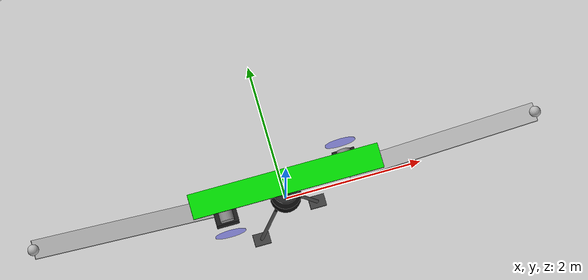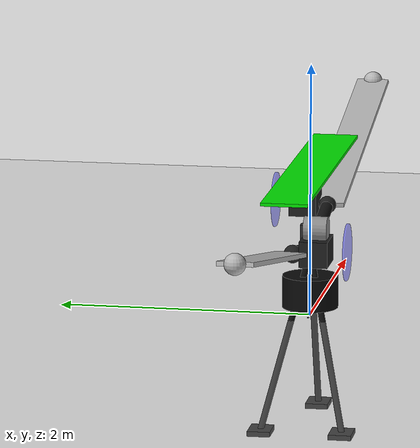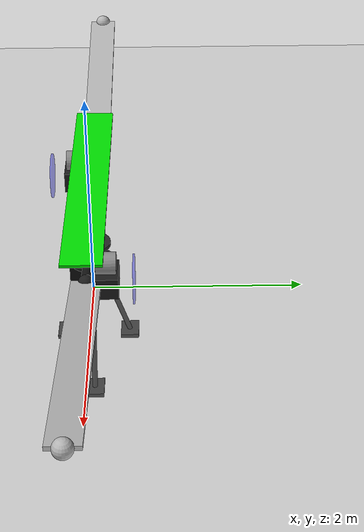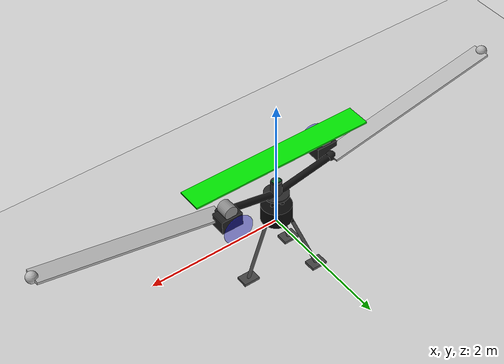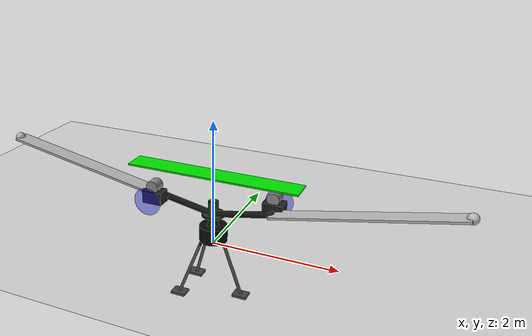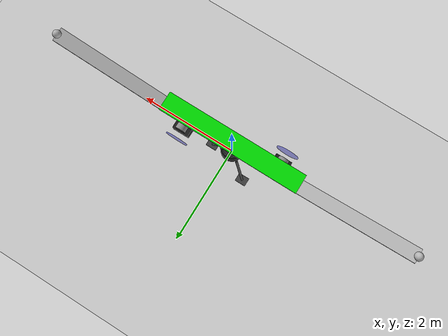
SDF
<?xml version="1.0" ?>
<sdf version="1.5">
  <world name="teeter_rotor_hitl_world">
    <scene>
      <ambient>0.7 0.7 0.7 1</ambient>
      <background>0.7 0.7 0.7 1</background>
      <shadows>false</shadows>
    </scene>

    <gui fullscreen="0">
      <camera name="user_camera">
        <pose>-7.0 -6.0 4.0 0 0.45 0.72</pose>
        <view_controller>orbit</view_controller>
        <projection_type>perspective</projection_type>
      </camera>
    </gui>

    <include>
      <uri>model://sun</uri>
    </include>

    <include>
      <uri>model://ground_plane</uri>
    </include>

    <include>
      <uri>model://asphalt_plane</uri>
    </include>

    <physics name="default_physics" default="0" type="ode">
      <gravity>0 0 -9.8066</gravity>
      <ode>
        <solver>
          <type>quick</type>
          <iters>10</iters>
          <sor>1.3</sor>
          <use_dynamic_moi_rescaling>0</use_dynamic_moi_rescaling>
        </solver>
        <constraints>
          <cfm>0</cfm>
          <erp>0.2</erp>
          <contact_max_correcting_vel>100</contact_max_correcting_vel>
          <contact_surface_layer>0.001</contact_surface_layer>
        </constraints>
      </ode>
      <max_step_size>0.004</max_step_size>
      <real_time_factor>1</real_time_factor>
      <real_time_update_rate>250</real_time_update_rate>
      <magnetic_field>6.0e-6 2.3e-5 -4.2e-5</magnetic_field>
    </physics>

    <include>
      <uri>model://teeter_rotor_hitl</uri>
      <pose>0 0 0 0 0 3.14159265359</pose>
    </include>
  </world>
</sdf>

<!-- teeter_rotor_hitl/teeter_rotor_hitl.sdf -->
<sdf version="1.6">
  <model name="teeter_rotor">
    <!-- DOCUMENTATION HEADER                                                    -->
    <pose>0 0 0.86 0 0 0</pose>
    <static>false</static>

    <!-- base_link                                                              -->
    <link name="base_link">
      <pose>0 0 0 0 0 0</pose>
      <inertial>
        <mass>11.05</mass>
        <inertia>
          <ixx>8.0</ixx>
          <iyy>8.0</iyy>
          <izz>12.0</izz>
          <ixy>0.0</ixy>
          <ixz>0.0</ixz>
          <iyz>0.0</iyz>
        </inertia>
      </inertial>

      <!-- Tripod mast between base_link and rotor hub              -->
      <!-- This is fixed to base_link and visually supports rotor   -->
      <!-- area. It does not physically attach to spinning rotor_link. -->
      <collision name="tripod_mast_front_left_collision">
        <pose>0.2250 0.1600 -0.1600 0.000000 0.390870 -2.523448</pose>
        <geometry>
          <cylinder>
            <radius>0.0250</radius>
            <length>1.4493</length>
          </cylinder>
        </geometry>
        <surface>
          <contact>
            <ode>
              <min_depth>0.001</min_depth>
              <max_vel>0</max_vel>
            </ode>
          </contact>
          <friction>
            <ode/>
          </friction>
        </surface>
      </collision>
      <collision name="tripod_mast_front_right_collision">
        <pose>0.2250 -0.1600 -0.1600 0.000000 0.390870 2.523448</pose>
        <geometry>
          <cylinder>
            <radius>0.0250</radius>
            <length>1.4493</length>
          </cylinder>
        </geometry>
        <surface>
          <contact>
            <ode>
              <min_depth>0.001</min_depth>
              <max_vel>0</max_vel>
            </ode>
          </contact>
          <friction>
            <ode/>
          </friction>
        </surface>
      </collision>
      <collision name="tripod_mast_rear_collision">
        <pose>-0.2400 0.0000 -0.1600 0.000000 0.343969 0.000000</pose>
        <geometry>
          <cylinder>
            <radius>0.0250</radius>
            <length>1.4234</length>
          </cylinder>
        </geometry>
        <surface>
          <contact>
            <ode>
              <min_depth>0.001</min_depth>
              <max_vel>0</max_vel>
            </ode>
          </contact>
          <friction>
            <ode/>
          </friction>
        </surface>
      </collision>

      <collision name="landing_foot_front_left_collision">
        <pose>0.4500 0.3200 -0.8400 0 0 0</pose>
        <geometry>
          <box>
            <size>0.24 0.18 0.04</size>
          </box>
        </geometry>
        <surface>
          <contact>
            <ode>
              <min_depth>0.001</min_depth>
              <max_vel>0</max_vel>
            </ode>
          </contact>
          <friction>
            <ode>
              <mu>1.0</mu>
              <mu2>1.0</mu2>
            </ode>
          </friction>
        </surface>
      </collision>
      <collision name="landing_foot_front_right_collision">
        <pose>0.4500 -0.3200 -0.8400 0 0 0</pose>
        <geometry>
          <box>
            <size>0.24 0.18 0.04</size>
          </box>
        </geometry>
        <surface>
          <contact>
            <ode>
              <min_depth>0.001</min_depth>
              <max_vel>0</max_vel>
            </ode>
          </contact>
          <friction>
            <ode>
              <mu>1.0</mu>
              <mu2>1.0</mu2>
            </ode>
          </friction>
        </surface>
      </collision>
      <collision name="landing_foot_rear_collision">
        <pose>-0.4800 0.0000 -0.8400 0 0 0</pose>
        <geometry>
          <box>
            <size>0.24 0.18 0.04</size>
          </box>
        </geometry>
        <surface>
          <contact>
            <ode>
              <min_depth>0.001</min_depth>
              <max_vel>0</max_vel>
            </ode>
          </contact>
          <friction>
            <ode>
              <mu>1.0</mu>
              <mu2>1.0</mu2>
            </ode>
          </friction>
        </surface>
      </collision>
      <visual name="landing_foot_front_left_visual">
        <pose>0.4500 0.3200 -0.8400 0 0 0</pose>
        <geometry>
          <box>
            <size>0.24 0.18 0.04</size>
          </box>
        </geometry>
        <material>
          <ambient>0.05 0.05 0.05 1</ambient>
          <diffuse>0.05 0.05 0.05 1</diffuse>
        </material>
      </visual>
      <visual name="landing_foot_front_right_visual">
        <pose>0.4500 -0.3200 -0.8400 0 0 0</pose>
        <geometry>
          <box>
            <size>0.24 0.18 0.04</size>
          </box>
        </geometry>
        <material>
          <ambient>0.05 0.05 0.05 1</ambient>
          <diffuse>0.05 0.05 0.05 1</diffuse>
        </material>
      </visual>
      <visual name="landing_foot_rear_visual">
        <pose>-0.4800 0.0000 -0.8400 0 0 0</pose>
        <geometry>
          <box>
            <size>0.24 0.18 0.04</size>
          </box>
        </geometry>
        <material>
          <ambient>0.05 0.05 0.05 1</ambient>
          <diffuse>0.05 0.05 0.05 1</diffuse>
        </material>
      </visual>
      <visual name="tripod_mast_front_left_visual">
        <pose>0.2250 0.1600 -0.1600 0.000000 0.390870 -2.523448</pose>
        <geometry>
          <cylinder>
            <radius>0.0250</radius>
            <length>1.4493</length>
          </cylinder>
        </geometry>
        <material>
          <ambient>0.05 0.05 0.05 1</ambient>
          <diffuse>0.05 0.05 0.05 1</diffuse>
        </material>
      </visual>
      <visual name="tripod_mast_front_right_visual">
        <pose>0.2250 -0.1600 -0.1600 0.000000 0.390870 2.523448</pose>
        <geometry>
          <cylinder>
            <radius>0.0250</radius>
            <length>1.4493</length>
          </cylinder>
        </geometry>
        <material>
          <ambient>0.05 0.05 0.05 1</ambient>
          <diffuse>0.05 0.05 0.05 1</diffuse>
        </material>
      </visual>
      <visual name="tripod_mast_rear_visual">
        <pose>-0.2400 0.0000 -0.1600 0.000000 0.343969 0.000000</pose>
        <geometry>
          <cylinder>
            <radius>0.0250</radius>
            <length>1.4234</length>
          </cylinder>
        </geometry>
        <material>
          <ambient>0.05 0.05 0.05 1</ambient>
          <diffuse>0.05 0.05 0.05 1</diffuse>
        </material>
      </visual>
      <visual name="tripod_mast_top_joint_visual">
        <pose>0.0000 0.0000 0.5500 0 0 0</pose>
        <geometry>
          <sphere>
            <radius>0.075</radius>
          </sphere>
        </geometry>
        <material>
          <ambient>0.18 0.18 0.18 1</ambient>
          <diffuse>0.18 0.18 0.18 1</diffuse>
        </material>
      </visual>

      <visual name="tripod_mast_top_plate_visual">
        <pose>0 0 0.51 0 0 0</pose>
        <geometry>
          <cylinder>
            <radius>0.18</radius>
            <length>0.035</length>
          </cylinder>
        </geometry>
        <material>
          <ambient>0.16 0.16 0.16 1</ambient>
          <diffuse>0.16 0.16 0.16 1</diffuse>
        </material>
      </visual>

      <!-- PX4 SITL sensor: IMU                                                -->
      <!--
        This sensor/plugin publishes IMU data for PX4 through the Gazebo
        mavlink_interface. The topic is /imu, matching imuSubTopic below.
      -->
      <sensor name="imu_sensor" type="imu">
        <always_on>true</always_on>
        <update_rate>100</update_rate>
        <visualize>false</visualize>
        <imu>
          <angular_velocity>
            <x>
              <noise type="gaussian">
                <mean>0.0</mean>
                <stddev>0.0003394</stddev>
                <bias_mean>0.0</bias_mean>
                <bias_stddev>3.8785e-05</bias_stddev>
              </noise>
            </x>
            <y>
              <noise type="gaussian">
                <mean>0.0</mean>
                <stddev>0.0003394</stddev>
                <bias_mean>0.0</bias_mean>
                <bias_stddev>3.8785e-05</bias_stddev>
              </noise>
            </y>
            <z>
              <noise type="gaussian">
                <mean>0.0</mean>
                <stddev>0.0003394</stddev>
                <bias_mean>0.0</bias_mean>
                <bias_stddev>3.8785e-05</bias_stddev>
              </noise>
            </z>
          </angular_velocity>
          <linear_acceleration>
            <x>
              <noise type="gaussian">
                <mean>0.0</mean>
                <stddev>0.004</stddev>
                <bias_mean>0.0</bias_mean>
                <bias_stddev>0.006</bias_stddev>
              </noise>
            </x>
            <y>
              <noise type="gaussian">
                <mean>0.0</mean>
                <stddev>0.004</stddev>
                <bias_mean>0.0</bias_mean>
                <bias_stddev>0.006</bias_stddev>
              </noise>
            </y>
            <z>
              <noise type="gaussian">
                <mean>0.0</mean>
                <stddev>0.004</stddev>
                <bias_mean>0.0</bias_mean>
                <bias_stddev>0.006</bias_stddev>
              </noise>
            </z>
          </linear_acceleration>
        </imu>
      </sensor>

    </link>

    <link name="/imu_link">
      <pose>0 0 0.694 0 0 0</pose>
      <inertial>
        <pose>0 0 0 0 0 0</pose>
        <mass>0.015</mass>
        <inertia>
          <ixx>0.00001</ixx>
          <ixy>0</ixy>
          <ixz>0</ixz>
          <iyy>0.00001</iyy>
          <iyz>0</iyz>
          <izz>0.00001</izz>
        </inertia>
      </inertial>
      <visual name="flight_controller_visual">
        <pose>0 0 0.035 0 0 0</pose>
        <geometry>
          <box>
            <size>0.12 0.08 0.025</size>
          </box>
        </geometry>
        <material>
          <ambient>0.02 0.18 0.08 1</ambient>
          <diffuse>0.04 0.35 0.14 1</diffuse>
          <specular>0.05 0.12 0.05 1</specular>
        </material>
      </visual>
    </link>

    <joint name="/imu_joint" type="fixed">
      <child>/imu_link</child>
      <!-- Rotor-hub mounted flight controller for SITL. The IMU link spins
           with rotor_link; mavlink_interface de-rotates it back into the
           body frame before sending data to stock PX4. -->
      <parent>rotor_link</parent>
    </joint>

    <!-- rotor_link                                                              -->
    <link name="rotor_link">
      <pose>0 0 0.694 0 0 0</pose>
      <inertial>
        <mass>8.0</mass>
        <inertia>
          <ixx>18.0</ixx>
          <iyy>18.0</iyy>
          <izz>35.0</izz>
          <ixy>0.0</ixy>
          <ixz>0.0</ixz>
          <iyz>0.0</iyz>
        </inertia>
      </inertial>

      <!-- Two-blade physical/simple rotor visual and collision. -->
      <collision name="blade_1_collision">
        <pose>2.2608 0 0.2617 0 -0.191986 0</pose>
        <geometry>
          <box>
            <size>2.7432 0.2667 0.035</size>
          </box>
        </geometry>
      </collision>
      <visual name="blade_1_visual">
        <pose>2.2608 0 0.2617 0 -0.191986 0</pose>
        <geometry>
          <box>
            <size>2.7432 0.2667 0.035</size>
          </box>
        </geometry>
      </visual>

      <collision name="blade_2_collision">
        <pose>-2.2608 0 0.2617 0 -0.191986 3.14159265359</pose>
        <geometry>
          <box>
            <size>2.7432 0.2667 0.035</size>
          </box>
        </geometry>
      </collision>
      <visual name="blade_2_visual">
        <pose>-2.2608 0 0.2617 0 -0.191986 3.14159265359</pose>
        <geometry>
          <box>
            <size>2.7432 0.2667 0.035</size>
          </box>
        </geometry>
      </visual>

      <!-- Central rotor hub / teeter pivot housing                 -->
      <!-- Hub radius = 0.08, length = 0.25                         -->
      <!-- Hub is lowered so the teeter beams connect to blade root -->
      <!-- instead of visual pitch indicators.                      -->
      <collision name="rotor_hub_collision">
        <pose>0 0 -0.0889 0 0 0</pose>
        <geometry>
          <cylinder>
            <radius>0.08</radius>
            <length>0.25</length>
          </cylinder>
        </geometry>
      </collision>

      <visual name="rotor_hub_visual">
        <pose>0 0 -0.0889 0 0 0</pose>
        <geometry>
          <cylinder>
            <radius>0.08</radius>
            <length>0.25</length>
          </cylinder>
        </geometry>
        <material>
          <ambient>0.20 0.20 0.20 1</ambient>
          <diffuse>0.20 0.20 0.20 1</diffuse>
        </material>
      </visual>

      <!-- Central teeter pivot marker.
           This is the lower center point of the V shape:
           right beam endpoint 1 =  0.0000 0 -0.1778
           left  beam endpoint 1 =  0.0000 0 -0.1778
      -->
      <visual name="teeter_center_pivot_visual">
        <pose>0 0 -0.1778 0 0 0</pose>
        <geometry>
          <sphere>
            <radius>0.075</radius>
          </sphere>
        </geometry>
        <material>
          <ambient>0.10 0.10 0.10 1</ambient>
          <diffuse>0.10 0.10 0.10 1</diffuse>
        </material>
      </visual>

      <!-- Two-part teeter beam, attached to actual blade roots     -->
      <!-- Blade root points from the current blade visuals:        -->
      <!--   blade 1 root: +0.9144 0 0.0000                         -->
      <!--   blade 2 root: -0.9144 0 0.0000                         -->
      <!-- Teeter center pivot: 0 0 -0.1778                         -->
      <!-- This makes each beam parallel to the 11 deg blade cone.  -->

      <!-- Right teeter beam: center pivot -> blade_1_visual root -->
      <collision name="teeter_beam_right_collision">
        <pose>0.4572 0 -0.0889 0 1.37881010908 0</pose>
        <geometry>
          <cylinder>
            <radius>0.05</radius>
            <length>0.9316</length>
          </cylinder>
        </geometry>
      </collision>

      <visual name="teeter_beam_right_visual">
        <pose>0.4572 0 -0.0889 0 1.37881010908 0</pose>
        <geometry>
          <cylinder>
            <radius>0.05</radius>
            <length>0.9316</length>
          </cylinder>
        </geometry>
        <material>
          <ambient>0.08 0.08 0.08 1</ambient>
          <diffuse>0.08 0.08 0.08 1</diffuse>
        </material>
      </visual>

      <!-- Left teeter beam: center pivot -> blade_2_visual root -->
      <collision name="teeter_beam_left_collision">
        <pose>-0.4572 0 -0.0889 0 -1.37881010908 0</pose>
        <geometry>
          <cylinder>
            <radius>0.05</radius>
            <length>0.9316</length>
          </cylinder>
        </geometry>
      </collision>

      <visual name="teeter_beam_left_visual">
        <pose>-0.4572 0 -0.0889 0 -1.37881010908 0</pose>
        <geometry>
          <cylinder>
            <radius>0.05</radius>
            <length>0.9316</length>
          </cylinder>
        </geometry>
        <material>
          <ambient>0.08 0.08 0.08 1</ambient>
          <diffuse>0.08 0.08 0.08 1</diffuse>
        </material>
      </visual>

      <!-- Optional root clamps to make the blade connection obvious. -->
      <visual name="blade_1_root_clamp_visual">
        <pose>0.9144 0 0.0000 0 0 0</pose>
        <geometry>
          <sphere>
            <radius>0.07</radius>
          </sphere>
        </geometry>
        <material>
          <ambient>0.12 0.12 0.12 1</ambient>
          <diffuse>0.12 0.12 0.12 1</diffuse>
        </material>
      </visual>

      <visual name="blade_2_root_clamp_visual">
        <pose>-0.9144 0 0.0000 0 0 0</pose>
        <geometry>
          <sphere>
            <radius>0.07</radius>
          </sphere>
        </geometry>
        <material>
          <ambient>0.12 0.12 0.12 1</ambient>
          <diffuse>0.12 0.12 0.12 1</diffuse>
        </material>
      </visual>

      <visual name="tip_weight_1_visual">
        <pose>3.6072 0 0.5234 0 0 0</pose>
        <geometry>
          <sphere>
            <radius>0.08</radius>
          </sphere>
        </geometry>
      </visual>
      <visual name="tip_weight_2_visual">
        <pose>-3.6072 0 0.5234 0 0 0</pose>
        <geometry>
          <sphere>
            <radius>0.08</radius>
          </sphere>
        </geometry>
      </visual>

      <visual name="gp76_engine_1_body_visual">
        <pose>0.9144 0.18 0.03 0 0 0</pose>
        <geometry>
          <box>
            <size>0.32 0.22 0.20</size>
          </box>
        </geometry>
        <material>
          <ambient>0.12 0.12 0.12 1</ambient>
          <diffuse>0.12 0.12 0.12 1</diffuse>
        </material>
      </visual>
      <visual name="gp76_engine_1_cylinder_visual">
        <pose>0.9144 0.18 0.20 1.57079632679 0 0</pose>
        <geometry>
          <cylinder>
            <radius>0.10</radius>
            <length>0.18</length>
          </cylinder>
        </geometry>
        <material>
          <ambient>0.55 0.55 0.55 1</ambient>
          <diffuse>0.55 0.55 0.55 1</diffuse>
        </material>
      </visual>
      <visual name="gp76_engine_1_prop_disc_visual">
        <pose>0.9144 0.42 0.03 1.57079632679 0 0</pose>
        <geometry>
          <cylinder>
            <radius>0.22</radius>
            <length>0.015</length>
          </cylinder>
        </geometry>
        <material>
          <ambient>0.1 0.1 0.9 0.45</ambient>
          <diffuse>0.1 0.1 0.9 0.45</diffuse>
        </material>
      </visual>

      <visual name="gp76_engine_2_body_visual">
        <pose>-0.9144 -0.18 0.03 0 0 3.14159265359</pose>
        <geometry>
          <box>
            <size>0.32 0.22 0.20</size>
          </box>
        </geometry>
        <material>
          <ambient>0.12 0.12 0.12 1</ambient>
          <diffuse>0.12 0.12 0.12 1</diffuse>
        </material>
      </visual>
      <visual name="gp76_engine_2_cylinder_visual">
        <pose>-0.9144 -0.18 0.20 1.57079632679 0 0</pose>
        <geometry>
          <cylinder>
            <radius>0.10</radius>
            <length>0.18</length>
          </cylinder>
        </geometry>
        <material>
          <ambient>0.55 0.55 0.55 1</ambient>
          <diffuse>0.55 0.55 0.55 1</diffuse>
        </material>
      </visual>
      <visual name="gp76_engine_2_prop_disc_visual">
        <pose>-0.9144 -0.42 0.03 1.57079632679 0 0</pose>
        <geometry>
          <cylinder>
            <radius>0.22</radius>
            <length>0.015</length>
          </cylinder>
        </geometry>
        <material>
          <ambient>0.1 0.1 0.9 0.45</ambient>
          <diffuse>0.1 0.1 0.9 0.45</diffuse>
        </material>
      </visual>
    </link>

    <!-- Visual-only pitch indicators. -->
    <link name="blade_1_pitch_indicator">
      <pose>0 0 1.17 0 0 0</pose>
      <gravity>false</gravity>
      <self_collide>false</self_collide>
      <inertial>
        <mass>0.001</mass>
        <inertia>
          <ixx>0.000001</ixx>
          <iyy>0.000001</iyy>
          <izz>0.000001</izz>
          <ixy>0.0</ixy>
          <ixz>0.0</ixz>
          <iyz>0.0</iyz>
        </inertia>
      </inertial>
      <visual name="blade_1_pitch_indicator_visual">
        <geometry>
          <box>
            <size>2.7432 0.36 0.025</size>
          </box>
        </geometry>
        <material>
          <ambient>0 0.9 0 1</ambient>
          <diffuse>0 0.9 0 1</diffuse>
        </material>
      </visual>
    </link>

    <link name="blade_2_pitch_indicator">
      <pose>0 0 1.17 0 0 0</pose>
      <gravity>false</gravity>
      <self_collide>false</self_collide>
      <inertial>
        <mass>0.001</mass>
        <inertia>
          <ixx>0.000001</ixx>
          <iyy>0.000001</iyy>
          <izz>0.000001</izz>
          <ixy>0.0</ixy>
          <ixz>0.0</ixz>
          <iyz>0.0</iyz>
        </inertia>
      </inertial>
      <visual name="blade_2_pitch_indicator_visual">
        <geometry>
          <box>
            <size>2.7432 0.36 0.025</size>
          </box>
        </geometry>
        <material>
          <ambient>0.9 0 0 1</ambient>
          <diffuse>0.9 0 0 1</diffuse>
        </material>
      </visual>
    </link>

    <!-- payload_link                                                            -->
    <link name="payload_link">
      <pose>0 0 0.194 0 0 0</pose>
      <inertial>
        <mass>163.2932532</mass>
        <inertia>
          <ixx>2.87226963</ixx>
          <iyy>2.87226963</iyy>
          <izz>3.98870134</izz>
          <ixy>0.0</ixy>
          <ixz>0.0</ixz>
          <iyz>0.0</iyz>
        </inertia>
      </inertial>
      <collision name="payload_plate_collision">
        <geometry>
          <cylinder>
            <radius>0.2206625</radius>
            <length>0.254</length>
          </cylinder>
        </geometry>
        <surface>
          <contact>
            <ode>
              <min_depth>0.001</min_depth>
              <max_vel>0</max_vel>
            </ode>
          </contact>
          <friction>
            <ode/>
          </friction>
        </surface>
      </collision>
      <visual name="payload_plate_visual">
        <geometry>
          <cylinder>
            <radius>0.2206625</radius>
            <length>0.254</length>
          </cylinder>
        </geometry>
        <material>
          <ambient>0.015 0.015 0.015 1</ambient>
          <diffuse>0.04 0.04 0.04 1</diffuse>
          <specular>0.12 0.12 0.12 1</specular>
        </material>
      </visual>
    </link>

    <joint name="payload_fixed_joint" type="fixed">
      <parent>base_link</parent>
      <child>payload_link</child>
    </joint>

    <joint name="main_rotor_joint" type="revolute">
      <parent>base_link</parent>
      <child>rotor_link</child>
      <pose>0 0 0.694 0 0 0</pose>
      <axis>
        <xyz>0 0 1</xyz>
        <limit>
          <lower>-1e16</lower>
          <upper>1e16</upper>
          <effort>10000</effort>
          <velocity>1000</velocity>
        </limit>
        <dynamics>
          <damping>0.01</damping>
          <friction>0.0</friction>
        </dynamics>
      </axis>
    </joint>

    <plugin name="teeter_rotor_plugin" filename="libteeter_rotor_plugin.so">
      <!-- baseLinkName:
           Name of the non-rotating vehicle body link. -->
      <baseLinkName>base_link</baseLinkName>
      <!-- rotorLinkName:
           Name of the simplified spinning rotor assembly. -->
      <rotorLinkName>rotor_link</rotorLinkName>
      <!-- payloadLinkName:
           Physical payload link whose mass/inertia/pose are configured below. -->
      <payloadLinkName>payload_link</payloadLinkName>
      <blade1IndicatorLinkName>blade_1_pitch_indicator</blade1IndicatorLinkName>
      <blade2IndicatorLinkName>blade_2_pitch_indicator</blade2IndicatorLinkName>
      <!-- jointName:
           Revolute joint connecting base_link and rotor_link. -->
      <jointName>main_rotor_joint</jointName>

      <!-- Primary test variables -->
      <!-- targetRpm:
           If useEngineDynamics=false, this directly forces rotor RPM.
           If useEngineDynamics=true, this is only the initial RPM at spawn.
           Unit: rpm. -->
      <targetRpm>0.0</targetRpm>
      <payloadEnabled>true</payloadEnabled>
      <payloadMassLb>360.0</payloadMassLb>
      <payloadOffsetFromCogM>0 0 0.194</payloadOffsetFromCogM>
      <!-- Barbell plate dimensions used to calculate annular-cylinder inertia. -->
      <payloadOuterDiameterIn>17.375</payloadOuterDiameterIn>
      <payloadInnerDiameterIn>1.0</payloadInnerDiameterIn>
      <payloadThicknessIn>10.0</payloadThicknessIn>
      <!-- payloadDisabledScale:
           Used only for the disabled payload dummy inertia calculation.
           payloadEnabled=true intentionally ignores this value. -->
      <payloadDisabledScale>0.08</payloadDisabledScale>
      <!-- blade1PitchDeg:
           Pitch command for blade 1 in degrees.
           Design/reference value: 7.27 deg. -->
      <blade1PitchDeg>7.27</blade1PitchDeg>
      <blade2PitchDeg>7.27</blade2PitchDeg>

      <!-- Azimuth-based cyclic pitch                                          -->
      <useCyclicPitch>true</useCyclicPitch>

      <collectiveDeg>6.73</collectiveDeg>

      <rollCyclicDeg>0.0</rollCyclicDeg>

      <pitchCyclicDeg>0.0</pitchCyclicDeg>

      <!-- cyclicPhaseOffsetDeg:
           Phase tuning knob.
           Helicopter/rotor systems often need phase correction.
           Start at 0 deg, then tune sign and phase after observing response. -->
      <cyclicPhaseOffsetDeg>0.0</cyclicPhaseOffsetDeg>

      <cyclicCommandFrame>world</cyclicCommandFrame>
      <swapCyclicInputs>false</swapCyclicInputs>
      <rollCyclicSign>1.0</rollCyclicSign>
      <pitchCyclicSign>1.0</pitchCyclicSign>

      <!-- PX4 actuator bridge                                                 -->
      <!-- enablePx4ActuatorInput:
           true  = subscribe to PX4/Gazebo motor speed command topic.
           false = use only SDF/manual values.

           This is the first PX4 integration step.
      -->
      <enablePx4ActuatorInput>true</enablePx4ActuatorInput>

      <px4ActuatorTopic>~/teeter_rotor/gazebo/command/motor_speed</px4ActuatorTopic>

      <px4InputMode>motor_speed</px4InputMode>

      <px4MotorSpeedScale>1000.0</px4MotorSpeedScale>

      <px4ThrottleZeroRaw>0.0</px4ThrottleZeroRaw>
      <px4ThrottleFullRaw>1000.0</px4ThrottleFullRaw>
      <px4CollectiveZeroRaw>0.0</px4CollectiveZeroRaw>
      <px4CollectiveFullRaw>1000.0</px4CollectiveFullRaw>

      <!-- Collective mapping:
           normalized actuator[1] = 0 -> minCollectiveCmdDeg
           normalized actuator[1] = 1 -> maxCollectiveCmdDeg -->
      <minCollectiveCmdDeg>2.0</minCollectiveCmdDeg>
      <maxCollectiveCmdDeg>12.0</maxCollectiveCmdDeg>

      <maxCyclicDeg>12.0</maxCyclicDeg>

      <!-- cyclicMomentPerDegNm:
           Optional bring-up assist moment applied to base_link from PX4 cyclic
           commands. Keep this at 0 for physical cyclic-pitch-only control. -->
      <cyclicMomentPerDegNm>0.0</cyclicMomentPerDegNm>

      <cyclicDiskTiltPerDeg>0.5</cyclicDiskTiltPerDeg>
      <maxCyclicDiskTiltDeg>8.0</maxCyclicDiskTiltDeg>

      <!-- px4CommandTimeoutSec:
           If no PX4 actuator message is received for this many seconds,
           plugin falls back to SDF/manual command values. -->
      <px4CommandTimeoutSec>0.5</px4CommandTimeoutSec>

      <!-- PX4 input debug:
           Prints raw motor_speed, normalized values, and mapped command values
           to the Gazebo terminal so QGC stick inputs can be inspected live. -->
      <printPx4InputDebug>true</printPx4InputDebug>
      <px4InputDebugIntervalSec>0.2</px4InputDebugIntervalSec>

      <!-- Engine dynamics -->
      <useEngineDynamics>true</useEngineDynamics>
      <engineThrottle>0.0</engineThrottle>
      <!-- engineRadiusFt:
           Distance from rotor center to each engine thrust line.
           Given design value: 3 ft.
           This is the torque arm for engine thrust. -->
      <engineRadiusFt>3.0</engineRadiusFt>
      <engineThrustLbEach>54.0</engineThrustLbEach>
      <!-- Step 1/2 tuning: increase rotorInertiaKgm2 for slower spool-up, decrease for faster spool-up. -->
      <rotorInertiaKgm2>45.0</rotorInertiaKgm2>
      <kTorque>0.831</kTorque>

      <!-- Visual-only pitch indicators -->
      <!-- showPitchIndicators:
           Enables green/red visual-only blade pitch plates. -->
      <showPitchIndicators>true</showPitchIndicators>
      <!-- animatePitchIndicators:
           If true, visual pitch indicators oscillate so pitch motion is easy to see.
           This is visual-only and does not change lift calculation. -->
      <animatePitchIndicators>false</animatePitchIndicators>
      <!-- pitchIndicatorAnimationAmplitudeDeg:
           Visual-only pitch animation amplitude in degrees. -->
      <pitchIndicatorAnimationAmplitudeDeg>5.0</pitchIndicatorAnimationAmplitudeDeg>
      <!-- pitchIndicatorAnimationFrequencyHz:
           Visual-only pitch animation frequency in Hz. -->
      <pitchIndicatorAnimationFrequencyHz>0.25</pitchIndicatorAnimationFrequencyHz>
      <!-- pitchIndicatorVerticalOffsetM:
           Raises the pitch indicators above the blades for visibility. -->
      <pitchIndicatorVerticalOffsetM>0.18</pitchIndicatorVerticalOffsetM>

      <!-- Fixed constants -->
      <!-- emptyWeightLb:
           Target empty vehicle weight.
           Given design value: 42 lb.
           Current SDF inertial masses approximate this empty weight. -->
      <emptyWeightLb>42.0</emptyWeightLb>
      <kThrust>3.69</kThrust>
      <!-- maxRpm:
           Maximum rotor RPM.
           Given design value: 220 rpm.
           Engine dynamics clamp rotor speed to this value. -->
      <maxRpm>220.0</maxRpm>

      <!-- Pitch model -->
      <!-- hoverPitchDeg:
           Reference pitch where pitch_factor = 1.0.
           Given design condition: 440 lb at 7.27 deg. -->
      <hoverPitchDeg>7.27</hoverPitchDeg>
      <!-- zeroLiftPitchDeg:
           Simple linear model zero-lift reference pitch.
           Tuning parameter, not exact airfoil zero-lift angle. -->
      <zeroLiftPitchDeg>1.0</zeroLiftPitchDeg>
      <minPitchDeg>-4.0</minPitchDeg>
      <!-- maxPitchDeg:
           Upper blade pitch clamp. Keep this above the collective upper bound
           so cyclic authority is not clipped during lateral control. -->
      <maxPitchDeg>22.0</maxPitchDeg>

      <useBladeElementLift>true</useBladeElementLift>
      <airDensityKgM3>1.225</airDensityKgM3>
      <bladeLiftSlopePerRad>6.28318530718</bladeLiftSlopePerRad>
      <bladeElementSections>12</bladeElementSections>
      <bladeElementLiftScale>0.0</bladeElementLiftScale>

      <!-- Rotor metadata -->
      <!-- rotorRadiusFt:
           Rotor radius from center to blade tip.
           Given value: 12 ft. -->
      <rotorRadiusFt>12.0</rotorRadiusFt>
      <!-- hubRadiusFt:
           Hub radius / blade start radius.
           Also matches engine radial location in this simplified layout.
           Given value: 3 ft. -->
      <hubRadiusFt>3.0</hubRadiusFt>
      <!-- numBlades:
           Number of large rotor blades. -->
      <numBlades>2</numBlades>
      <!-- bladeChordIn:
           Blade chord.
           Given value: 10.5 inches. -->
      <bladeChordIn>10.5</bladeChordIn>
      <!-- airfoil:
           Airfoil metadata.
           Not used yet in current equivalent lift model.
           Future blade-element model should use this. -->
      <airfoil>NACA23015</airfoil>
      <!-- tipSpeedFps:
           Tip speed at 220 rpm.
           Given value: 276 ft/s. -->
      <tipSpeedFps>276.0</tipSpeedFps>
      <!-- designGrossWeightLb:
           Design gross weight at 7.27 deg collective.
           Given value: 440 lb. -->
      <designGrossWeightLb>440.0</designGrossWeightLb>
      <!-- tipWeightLb:
           Tip weight per blade.
           Given value: 2.53 lb. -->
      <tipWeightLb>2.53</tipWeightLb>
      <!-- bladeSpanwiseDensityLbFt:
           Approximate blade spanwise density.
           Given value: about 0.3 lb/ft. -->
      <bladeSpanwiseDensityLbFt>0.3</bladeSpanwiseDensityLbFt>
      <!-- forwardSpeedMph:
           Design forward speed metadata.
           Not used yet in current force model. -->
      <forwardSpeedMph>20.0</forwardSpeedMph>
      <!-- rotorTwistDeg:
           Blade twist metadata.
           Given value: 6 deg linear twist.
           Future blade-element model should use this. -->
      <rotorTwistDeg>6.0</rotorTwistDeg>
      <!-- rotorPlaneHeightFt:
           Rotor plane height above ground.
           Given value: 5 ft = 1.524 m. -->
      <rotorPlaneHeightFt>5.0</rotorPlaneHeightFt>
      <!-- teeterAngleLimitDeg:
           Teeter hinge range metadata.
           Given value: +/- 15 deg.
           True teeter hinge is not implemented yet. -->
      <teeterAngleLimitDeg>15.0</teeterAngleLimitDeg>
      <preConeAngleDeg>11.0</preConeAngleDeg>
      <!-- gyroPrecessionTorqueFtLb:
           Gyroscopic precession torque metadata.
           Not directly used yet. -->
      <gyroPrecessionTorqueFtLb>262.0</gyroPrecessionTorqueFtLb>
      <!-- torqueRequiredFtLb:
           Rotor torque required at design condition.
           Used to justify kTorque. -->
      <torqueRequiredFtLb>325.0</torqueRequiredFtLb>
      <!-- equivalentShaftHp:
           Equivalent shaft horsepower metadata.
           Given value: 16 hp. Used with propulsiveEfficiency as the engine
           power cap for rotor drive torque. -->
      <equivalentShaftHp>16.0</equivalentShaftHp>
      <!-- propulsiveEfficiency:
           Design assumption used to convert equivalentShaftHp into available
           rotor power. -->
      <propulsiveEfficiency>0.85</propulsiveEfficiency>
      <!-- numEngines:
           Number of GP-76 engines. -->
      <numEngines>2</numEngines>
      <!-- engineHpEach:
           GP-76 power metadata.
           Current torque model uses thrust and radius, not HP curve. -->
      <engineHpEach>8.0</engineHpEach>
      <!-- mainBladeSparOdMm:
           Main blade spar outer diameter metadata. -->
      <mainBladeSparOdMm>30.0</mainBladeSparOdMm>
      <!-- mainBladeSparIdMm:
           Main blade spar inner diameter metadata. -->
      <mainBladeSparIdMm>28.0</mainBladeSparIdMm>
    </plugin>

    <include>
      <uri>model://gps</uri>
      <pose>0.1 0 0 0 0 0</pose>
      <name>gps0</name>
    </include>
    <joint name="gps0_joint" type="fixed">
      <child>gps0::link</child>
      <parent>base_link</parent>
    </joint>

    <plugin name="groundtruth_plugin" filename="libgazebo_groundtruth_plugin.so">
      <robotNamespace/>
    </plugin>
    <plugin name="magnetometer_plugin" filename="libgazebo_magnetometer_plugin.so">
      <robotNamespace/>
      <pubRate>100</pubRate>
      <noiseDensity>0.0004</noiseDensity>
      <randomWalk>6.4e-06</randomWalk>
      <biasCorrelationTime>600</biasCorrelationTime>
      <magTopic>/mag</magTopic>
    </plugin>
    <plugin name="barometer_plugin" filename="libgazebo_barometer_plugin.so">
      <robotNamespace/>
      <pubRate>50</pubRate>
      <baroTopic>/baro</baroTopic>
      <baroDriftPaPerSec>0</baroDriftPaPerSec>
    </plugin>
    <plugin name="mavlink_interface" filename="libgazebo_mavlink_interface.so">
      <robotNamespace/>
      <imuSubTopic>/imu</imuSubTopic>
      <magSubTopic>/mag</magSubTopic>
      <baroSubTopic>/baro</baroSubTopic>
      <mavlink_addr>INADDR_ANY</mavlink_addr>
      <mavlink_tcp_port>4560</mavlink_tcp_port>
      <mavlink_udp_port>14560</mavlink_udp_port>
      <serialEnabled>1</serialEnabled>
      <serialDevice>/dev/serial/by-id/usb-Auterion_PX4_FMU_v6X.x_0-if00</serialDevice>
      <baudRate>921600</baudRate>
      <qgc_addr>INADDR_ANY</qgc_addr>
      <qgc_udp_port>14550</qgc_udp_port>
      <sdk_addr>INADDR_ANY</sdk_addr>
      <sdk_udp_port>14540</sdk_udp_port>
      <hil_mode>1</hil_mode>
      <hil_state_level>0</hil_state_level>
      <imu_rate>100</imu_rate>
      <send_vision_estimation>0</send_vision_estimation>
      <send_odometry>0</send_odometry>
      <enable_lockstep>1</enable_lockstep>
      <!-- The FC/IMU is mounted on rotor_link, while stock PX4 still expects
           body-frame IMU data. De-rotate the rotor-frame IMU into base_link
           before forwarding it to PX4. -->
      <derotateImuToBaseLink>true</derotateImuToBaseLink>
      <derotateImuBaseLinkName>base_link</derotateImuBaseLinkName>
      <derotateImuSensorLinkName>/imu_link</derotateImuSensorLinkName>
      <use_tcp>1</use_tcp>
      <motorSpeedCommandPubTopic>/gazebo/command/motor_speed</motorSpeedCommandPubTopic>
      <control_channels>
        <channel name="engine_throttle">
          <input_index>0</input_index>
          <input_offset>0</input_offset>
          <input_scaling>1000</input_scaling>
          <zero_position_disarmed>0</zero_position_disarmed>
          <zero_position_armed>0</zero_position_armed>
          <joint_control_type>velocity</joint_control_type>
        </channel>
        <channel name="collective">
          <input_index>1</input_index>
          <input_offset>0</input_offset>
          <input_scaling>1000</input_scaling>
          <zero_position_disarmed>0</zero_position_disarmed>
          <zero_position_armed>0</zero_position_armed>
          <joint_control_type>velocity</joint_control_type>
        </channel>
        <channel name="roll_cyclic">
          <input_index>2</input_index>
          <input_offset>1</input_offset>
          <input_scaling>500</input_scaling>
          <zero_position_disarmed>0</zero_position_disarmed>
          <zero_position_armed>0</zero_position_armed>
          <joint_control_type>velocity</joint_control_type>
        </channel>
        <channel name="pitch_cyclic">
          <input_index>3</input_index>
          <input_offset>1</input_offset>
          <input_scaling>500</input_scaling>
          <zero_position_disarmed>0</zero_position_disarmed>
          <zero_position_armed>0</zero_position_armed>
          <joint_control_type>velocity</joint_control_type>
        </channel>
      </control_channels>
    </plugin>
    <plugin name="rotors_gazebo_imu_plugin" filename="libgazebo_imu_plugin.so">
      <robotNamespace/>
      <linkName>/imu_link</linkName>
      <imuTopic>/imu</imuTopic>
      <gyroscopeNoiseDensity>0.00018665</gyroscopeNoiseDensity>
      <gyroscopeRandomWalk>3.8785e-05</gyroscopeRandomWalk>
      <gyroscopeBiasCorrelationTime>1000.0</gyroscopeBiasCorrelationTime>
      <gyroscopeTurnOnBiasSigma>0.0087</gyroscopeTurnOnBiasSigma>
      <accelerometerNoiseDensity>0.00186</accelerometerNoiseDensity>
      <accelerometerRandomWalk>0.006</accelerometerRandomWalk>
      <accelerometerBiasCorrelationTime>300.0</accelerometerBiasCorrelationTime>
      <accelerometerTurnOnBiasSigma>0.196</accelerometerTurnOnBiasSigma>
    </plugin>

  </model>
</sdf>

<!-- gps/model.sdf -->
<sdf version="1.6">
  <model name="gps">
    <link name="link">
      <pose>0 0 0 0 0 0</pose>
      <inertial>
        <pose>0 0 0 0 0 0</pose>
        <mass>0.015</mass>
        <inertia>
          <ixx>1e-05</ixx>
          <ixy>0</ixy>
          <ixz>0</ixz>
          <iyy>1e-05</iyy>
          <iyz>0</iyz>
          <izz>1e-05</izz>
        </inertia>
      </inertial>
      <visual name="visual">
        <geometry>
          <cylinder>
            <radius>0.01</radius>
            <length>0.002</length>
          </cylinder>
        </geometry>
        <material>
          <script>
            <name>Gazebo/Black</name>
            <uri>file://usr/share/gz/gz-sim8/media/gazebo.material</uri>
          </script>
        </material>
      </visual>
      <sensor name="gps" type="gps">
        <pose>0 0 0 0 0 0</pose>
        <update_rate>5.0</update_rate>
        <always_on>true</always_on>
        <visualize>false</visualize>
        <!-- GpsSensor noise currently not used -->
        <plugin name="gps_plugin" filename="libgazebo_gps_plugin.so">
          <robotNamespace></robotNamespace>
          <gpsNoise>true</gpsNoise>
          <gpsXYRandomWalk>2.0</gpsXYRandomWalk>
          <gpsZRandomWalk>4.0</gpsZRandomWalk>
          <gpsXYNoiseDensity>2.0e-4</gpsXYNoiseDensity>
          <gpsZNoiseDensity>4.0e-4</gpsZNoiseDensity>
          <gpsVXYNoiseDensity>0.2</gpsVXYNoiseDensity>
          <gpsVZNoiseDensity>0.4</gpsVZNoiseDensity>
        </plugin>
      </sensor>
    </link>
  </model>
</sdf>
